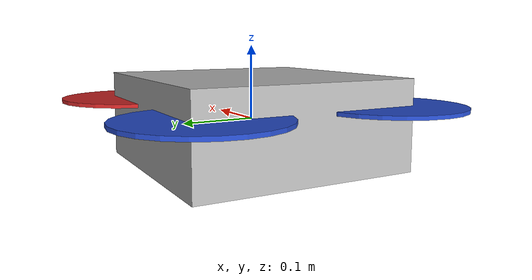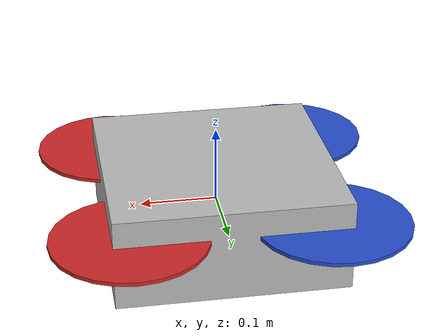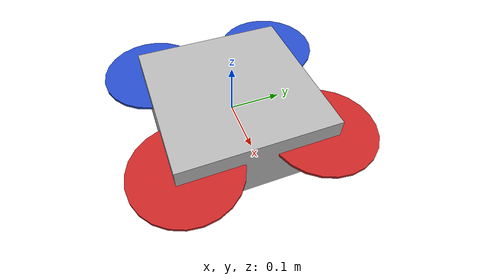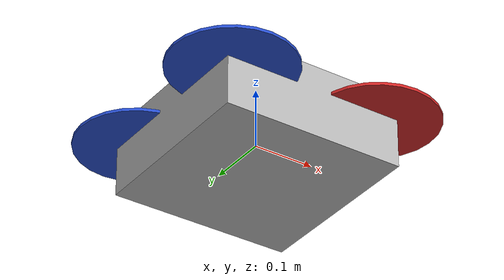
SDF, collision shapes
<?xml version="1.0"?>

<sdf version='1.6'>
  <model name='ardrone_model'>
  <static>false</static>

    <link name='base_link'>
      <pose>0 0 0 0 0 0</pose>
      <inertial>
        <pose>0 0 0 0 0 0</pose>
        <mass>1.5</mass>
        <inertia>
          <ixx>0.0347563</ixx>
          <ixy>0</ixy>
          <ixz>0</ixz>
          <iyy>0.0458929</iyy>
          <iyz>0</iyz>
          <izz>0.0977</izz>
        </inertia>
      </inertial>
      <collision name='base_link_inertia_collision'>
        <pose>0 0 0 0 0 0</pose>
        <geometry>
            <box>
              <size>0.3 0.3 0.12</size>
            </box>
        </geometry>
      </collision>
      <visual name='base_link_inertia_visual'>
        <pose>0 0 0 0 0 0</pose>
        <geometry>
          <mesh>
            <scale>1 1 1</scale>
            <uri>model://ardrone/meshes/ardrone/quadrotor_4.dae</uri>
          </mesh>
        </geometry>
      </visual>
    </link>
    <link name='imu_link'>
      <pose>0 0 0 0 0 0</pose>
      <inertial>
        <pose>0 0 0 0 0 0</pose>
        <mass>0.015</mass>
        <inertia>
          <ixx>1e-05</ixx>
          <ixy>0</ixy>
          <ixz>0</ixz>
          <iyy>1e-05</iyy>
          <iyz>0</iyz>
          <izz>1e-05</izz>
        </inertia>
      </inertial>
    </link>
    <joint name='imu_joint' type='revolute'>
      <child>imu_link</child>
      <parent>base_link</parent>
      <axis>
        <xyz>1 0 0</xyz>
        <limit>
          <lower>0</lower>
          <upper>0</upper>
          <effort>0</effort>
          <velocity>0</velocity>
        </limit>
        <dynamics>
          <spring_reference>0</spring_reference>
          <spring_stiffness>0</spring_stiffness>
        </dynamics>
        <use_parent_model_frame>1</use_parent_model_frame>
      </axis>
    </joint>
    <link name='imugt_link'>
      <pose>0 0 0 0 0 0</pose>
      <inertial>
        <pose>0 0 0 0 0 0</pose>
        <mass>1e-05</mass>
        <inertia>
          <ixx>1e-05</ixx>
          <ixy>0</ixy>
          <ixz>0</ixz>
          <iyy>1e-05</iyy>
          <iyz>0</iyz>
          <izz>1e-05</izz>
        </inertia>
      </inertial>
    </link>
    <joint name='imugt_joint' type='revolute'>
      <child>imugt_link</child>
      <parent>base_link</parent>
      <axis>
        <xyz>1 0 0</xyz>
        <limit>
          <lower>0</lower>
          <upper>0</upper>
          <effort>0</effort>
          <velocity>0</velocity>
        </limit>
        <dynamics>
          <spring_reference>0</spring_reference>
          <spring_stiffness>0</spring_stiffness>
        </dynamics>
        <use_parent_model_frame>1</use_parent_model_frame>
      </axis>
    </joint>
    <link name='odometry_sensor1_link'>
      <pose>0 0 0 0 0 0</pose>
      <inertial>
        <pose>0 0 0 0 0 0</pose>
        <mass>1e-05</mass>
        <inertia>
          <ixx>1e-05</ixx>
          <ixy>0</ixy>
          <ixz>0</ixz>
          <iyy>1e-05</iyy>
          <iyz>0</iyz>
          <izz>1e-05</izz>
        </inertia>
      </inertial>
    </link>
    <joint name='odometry_sensor1_joint' type='revolute'>
      <child>odometry_sensor1_link</child>
      <parent>base_link</parent>
      <axis>
        <xyz>1 0 0</xyz>
        <limit>
          <lower>0</lower>
          <upper>0</upper>
          <effort>0</effort>
          <velocity>0</velocity>
        </limit>
        <dynamics>
          <spring_reference>0</spring_reference>
          <spring_stiffness>0</spring_stiffness>
        </dynamics>
        <use_parent_model_frame>1</use_parent_model_frame>
      </axis>
    </joint>
    <link name='odometry_sensorgt_link'>
      <pose>0 0 0 0 0 0</pose>
      <inertial>
        <pose>0 0 0 0 0 0</pose>
        <mass>1e-05</mass>
        <inertia>
          <ixx>1e-05</ixx>
          <ixy>0</ixy>
          <ixz>0</ixz>
          <iyy>1e-05</iyy>
          <iyz>0</iyz>
          <izz>1e-05</izz>
        </inertia>
      </inertial>
    </link>
    <joint name='odometry_sensorgt_joint' type='revolute'>
      <child>odometry_sensorgt_link</child>
      <parent>base_link</parent>
      <axis>
        <xyz>1 0 0</xyz>
        <limit>
          <lower>0</lower>
          <upper>0</upper>
          <effort>0</effort>
          <velocity>0</velocity>
        </limit>
        <dynamics>
          <spring_reference>0</spring_reference>
          <spring_stiffness>0</spring_stiffness>
        </dynamics>
        <use_parent_model_frame>1</use_parent_model_frame>
      </axis>
    </joint>
    <link name='rotor_0'>
      <pose>0.127279 -0.127279 0.023 0 0 0</pose>
      <inertial>
        <pose>0 0 0 0 0 0</pose>
        <mass>0.005</mass>
        <inertia>
          <ixx>9.75e-07</ixx>
          <ixy>0</ixy>
          <ixz>0</ixz>
          <iyy>4.17041e-05</iyy>
          <iyz>0</iyz>
          <izz>4.26041e-05</izz>
        </inertia>
      </inertial>
      <collision name='rotor_0_collision'>
        <pose>0 0 0 0 0 0</pose>
        <geometry>
          <cylinder>
            <length>0.005</length>
            <radius>0.1</radius>
          </cylinder>
        </geometry>
        <surface>
          <contact>
            <ode/>
          </contact>
          <friction>
            <ode/>
          </friction>
        </surface>
      </collision>
      <visual name='rotor_0_visual'>
        <pose>0 0 0 0 0 0</pose>
        <geometry>
          <mesh>
            <scale>0.1 0.1 0.1</scale>
            <uri>model://ardrone/meshes/ardrone/propeller_ccw.dae</uri>
          </mesh>
        </geometry>
        <material>
          <script>
            <name>Gazebo/Red</name>
            <uri>file://media/materials/scripts/gazebo.material</uri>
          </script>
        </material>
      </visual>
      <gravity>1</gravity>
      <velocity_decay/>
    </link>
    <joint name='rotor_0_joint' type='revolute'>
      <child>rotor_0</child>
      <parent>base_link</parent>
      <axis>
        <xyz>0 0 1</xyz>
        <limit>
          <lower>-1e+16</lower>
          <upper>1e+16</upper>
        </limit>
        <dynamics>
          <spring_reference>0</spring_reference>
          <spring_stiffness>0</spring_stiffness>
        </dynamics>
        <use_parent_model_frame>1</use_parent_model_frame>
      </axis>
    </joint>
    <link name='rotor_1'>
      <pose>-0.127279 0.127279 0.023 0 0 0</pose>
      <inertial>
        <pose>0 0 0 0 0 0</pose>
        <mass>0.005</mass>
        <inertia>
          <ixx>9.75e-07</ixx>
          <ixy>0</ixy>
          <ixz>0</ixz>
          <iyy>4.17041e-05</iyy>
          <iyz>0</iyz>
          <izz>4.26041e-05</izz>
        </inertia>
      </inertial>
      <collision name='rotor_1_collision'>
        <pose>0 0 0 0 0 0</pose>
        <geometry>
          <cylinder>
            <length>0.005</length>
            <radius>0.1</radius>
          </cylinder>
        </geometry>
        <surface>
          <contact>
            <ode/>
          </contact>
          <friction>
            <ode/>
          </friction>
        </surface>
      </collision>
      <visual name='rotor_1_visual'>
        <pose>0 0 0 0 0 0</pose>
        <geometry>
          <mesh>
            <scale>0.1 0.1 0.1</scale>
            <uri>model://ardrone/meshes/ardrone/propeller_ccw.dae</uri>
          </mesh>
        </geometry>
        <material>
          <script>
            <name>Gazebo/Blue</name>
            <uri>file://media/materials/scripts/gazebo.material</uri>
          </script>
        </material>
      </visual>
      <gravity>1</gravity>
      <velocity_decay/>
    </link>
    <joint name='rotor_1_joint' type='revolute'>
      <child>rotor_1</child>
      <parent>base_link</parent>
      <axis>
        <xyz>0 0 1</xyz>
        <limit>
          <lower>-1e+16</lower>
          <upper>1e+16</upper>
        </limit>
        <dynamics>
          <spring_reference>0</spring_reference>
          <spring_stiffness>0</spring_stiffness>
        </dynamics>
        <use_parent_model_frame>1</use_parent_model_frame>
      </axis>
    </joint>
    <link name='rotor_2'>
      <pose>0.127279 0.127279 0.023 0 0 0</pose>
      <inertial>
        <pose>0 0 0 0 0 0</pose>
        <mass>0.005</mass>
        <inertia>
          <ixx>9.75e-07</ixx>
          <ixy>0</ixy>
          <ixz>0</ixz>
          <iyy>4.17041e-05</iyy>
          <iyz>0</iyz>
          <izz>4.26041e-05</izz>
        </inertia>
      </inertial>
      <collision name='rotor_2_collision'>
        <pose>0 0 0 0 0 0</pose>
        <geometry>
          <cylinder>
            <length>0.005</length>
            <radius>0.1</radius>
          </cylinder>
        </geometry>
        <surface>
          <contact>
            <ode/>
          </contact>
          <friction>
            <ode/>
          </friction>
        </surface>
      </collision>
      <visual name='rotor_2_visual'>
        <pose>0 0 0 0 0 0</pose>
        <geometry>
          <mesh>
            <scale>0.1 0.1 0.1</scale>
            <uri>model://ardrone/meshes/ardrone/propeller_cw.dae</uri>
          </mesh>
        </geometry>
        <material>
          <script>
            <name>Gazebo/Red</name>
            <uri>file://media/materials/scripts/gazebo.material</uri>
          </script>
        </material>
      </visual>
      <gravity>1</gravity>
      <velocity_decay/>
    </link>
    <joint name='rotor_2_joint' type='revolute'>
      <child>rotor_2</child>
      <parent>base_link</parent>
      <axis>
        <xyz>0 0 1</xyz>
        <limit>
          <lower>-1e+16</lower>
          <upper>1e+16</upper>
        </limit>
        <dynamics>
          <spring_reference>0</spring_reference>
          <spring_stiffness>0</spring_stiffness>
        </dynamics>
        <use_parent_model_frame>1</use_parent_model_frame>
      </axis>
    </joint>
    <link name='rotor_3'>
      <pose>-0.127279 -0.127279 0.023 0 0 0</pose>
      <inertial>
        <pose>0 0 0 0 0 0</pose>
        <mass>0.005</mass>
        <inertia>
          <ixx>9.75e-07</ixx>
          <ixy>0</ixy>
          <ixz>0</ixz>
          <iyy>4.17041e-05</iyy>
          <iyz>0</iyz>
          <izz>4.26041e-05</izz>
        </inertia>
      </inertial>
      <collision name='rotor_3_collision'>
        <pose>0 0 0 0 0 0</pose>
        <geometry>
          <cylinder>
            <length>0.005</length>
            <radius>0.1</radius>
          </cylinder>
        </geometry>
        <surface>
          <contact>
            <ode/>
          </contact>
          <friction>
            <ode/>
          </friction>
        </surface>
      </collision>
      <visual name='rotor_3_visual'>
        <pose>0 0 0 0 0 0</pose>
        <geometry>
          <mesh>
            <scale>0.1 0.1 0.1</scale>
            <uri>model://ardrone/meshes/ardrone/propeller_cw.dae</uri>
          </mesh>
        </geometry>
        <material>
          <script>
            <name>Gazebo/Blue</name>
            <uri>file://media/materials/scripts/gazebo.material</uri>
          </script>
        </material>
      </visual>
      <gravity>1</gravity>
      <velocity_decay/>
    </link>
    <joint name='rotor_3_joint' type='revolute'>
      <child>rotor_3</child>
      <parent>base_link</parent>
      <axis>
        <xyz>0 0 1</xyz>
        <limit>
          <lower>-1e+16</lower>
          <upper>1e+16</upper>
        </limit>
        <dynamics>
          <spring_reference>0</spring_reference>
          <spring_stiffness>0</spring_stiffness>
        </dynamics>
        <use_parent_model_frame>1</use_parent_model_frame>
      </axis>
    </joint>
    <plugin name='multirotor_base_plugin' filename='librotors_gazebo_multirotor_base_plugin.so'>
      <robotNamespace>ardrone</robotNamespace>
      <linkName>base_link</linkName>
      <rotorVelocitySlowdownSim>10</rotorVelocitySlowdownSim>
    </plugin>
    <plugin name='ardrone_front_right_motor_model' filename='librotors_gazebo_motor_model.so'>
      <robotNamespace>ardrone</robotNamespace>
      <jointName>rotor_0_joint</jointName>
      <linkName>rotor_0</linkName>
      <turningDirection>ccw</turningDirection>
      <timeConstantUp>0.0125</timeConstantUp>
      <timeConstantDown>0.025</timeConstantDown>
      <maxRotVelocity>838</maxRotVelocity>
      <motorConstant>8.54858e-06</motorConstant>
      <momentConstant>0.016</momentConstant>
      <commandSubTopic>gazebo/command/motor_speed</commandSubTopic>
      <motorNumber>0</motorNumber>
      <rotorDragCoefficient>8.06428e-05</rotorDragCoefficient>
      <rollingMomentCoefficient>1e-06</rollingMomentCoefficient>
      <motorSpeedPubTopic>motor_speed/0</motorSpeedPubTopic>
      <rotorVelocitySlowdownSim>10</rotorVelocitySlowdownSim>
    </plugin>
    <plugin name='ardrone_back_left_motor_model' filename='librotors_gazebo_motor_model.so'>
      <robotNamespace>ardrone</robotNamespace>
      <jointName>rotor_1_joint</jointName>
      <linkName>rotor_1</linkName>
      <turningDirection>ccw</turningDirection>
      <timeConstantUp>0.0125</timeConstantUp>
      <timeConstantDown>0.025</timeConstantDown>
      <maxRotVelocity>838</maxRotVelocity>
      <motorConstant>8.54858e-06</motorConstant>
      <momentConstant>0.016</momentConstant>
      <commandSubTopic>gazebo/command/motor_speed</commandSubTopic>
      <motorNumber>1</motorNumber>
      <rotorDragCoefficient>8.06428e-05</rotorDragCoefficient>
      <rollingMomentCoefficient>1e-06</rollingMomentCoefficient>
      <motorSpeedPubTopic>motor_speed/1</motorSpeedPubTopic>
      <rotorVelocitySlowdownSim>10</rotorVelocitySlowdownSim>
    </plugin>
    <plugin name='ardrone_front_left_motor_model' filename='librotors_gazebo_motor_model.so'>
      <robotNamespace>ardrone</robotNamespace>
      <jointName>rotor_2_joint</jointName>
      <linkName>rotor_2</linkName>
      <turningDirection>cw</turningDirection>
      <timeConstantUp>0.0125</timeConstantUp>
      <timeConstantDown>0.025</timeConstantDown>
      <maxRotVelocity>838</maxRotVelocity>
      <motorConstant>8.54858e-06</motorConstant>
      <momentConstant>0.016</momentConstant>
      <commandSubTopic>gazebo/command/motor_speed</commandSubTopic>
      <motorNumber>2</motorNumber>
      <rotorDragCoefficient>8.06428e-05</rotorDragCoefficient>
      <rollingMomentCoefficient>1e-06</rollingMomentCoefficient>
      <motorSpeedPubTopic>motor_speed/2</motorSpeedPubTopic>
      <rotorVelocitySlowdownSim>10</rotorVelocitySlowdownSim>
    </plugin>

    <plugin name='ardrone_back_right_motor_model' filename='librotors_gazebo_motor_model.so'>
      <robotNamespace>ardrone</robotNamespace>
      <jointName>rotor_3_joint</jointName>
      <linkName>rotor_3</linkName>
      <turningDirection>cw</turningDirection>
      <timeConstantUp>0.0125</timeConstantUp>
      <timeConstantDown>0.025</timeConstantDown>
      <maxRotVelocity>838</maxRotVelocity>
      <motorConstant>8.54858e-06</motorConstant>
      <momentConstant>0.016</momentConstant>
      <commandSubTopic>gazebo/command/motor_speed</commandSubTopic>
      <motorNumber>3</motorNumber>
      <rotorDragCoefficient>8.06428e-05</rotorDragCoefficient>
      <rollingMomentCoefficient>1e-06</rollingMomentCoefficient>
      <motorSpeedPubTopic>motor_speed/3</motorSpeedPubTopic>
      <rotorVelocitySlowdownSim>10</rotorVelocitySlowdownSim>
    </plugin>

    <plugin name='controller_interface' filename='librotors_gazebo_controller_interface.so'>
      <robotNamespace>ardrone</robotNamespace>
      <commandAttitudeThrustSubTopic>command/attitude</commandAttitudeThrustSubTopic>
      <commandRateThrustSubTopic>command/rate</commandRateThrustSubTopic>
      <commandMotorSpeedSubTopic>command/motor_speed</commandMotorSpeedSubTopic>
      <imuSubTopic>imu</imuSubTopic>
      <motorSpeedCommandPubTopic>gazebo/command/motor_speed</motorSpeedCommandPubTopic>
    </plugin>

    <plugin name='rotors_gazebo_imu_plugin' filename='librotors_gazebo_imu_plugin.so'>
      <robotNamespace>ardrone</robotNamespace>
      <linkName>imu_link</linkName>
      <imuTopic>imu</imuTopic>
      <gyroscopeNoiseDensity>0.0003394</gyroscopeNoiseDensity>
      <gyroscopeRandomWalk>3.8785e-05</gyroscopeRandomWalk>
      <gyroscopeBiasCorrelationTime>1000.0</gyroscopeBiasCorrelationTime>
      <gyroscopeTurnOnBiasSigma>0.0087</gyroscopeTurnOnBiasSigma>
      <accelerometerNoiseDensity>0.004</accelerometerNoiseDensity>
      <accelerometerRandomWalk>0.006</accelerometerRandomWalk>
      <accelerometerBiasCorrelationTime>300.0</accelerometerBiasCorrelationTime>
      <accelerometerTurnOnBiasSigma>0.196</accelerometerTurnOnBiasSigma>
    </plugin>

    <plugin name="rotors_gazebo_imugt_plugin" filename="librotors_gazebo_imu_plugin.so">
      <robotNamespace>ardrone</robotNamespace>
      <linkName>imugt_link</linkName>
      <imuTopic>ground_truth/imu</imuTopic>
      <gyroscopeNoiseDensity>0.0</gyroscopeNoiseDensity>
      <gyroscopeRandomWalk>0.0</gyroscopeRandomWalk>
      <gyroscopeBiasCorrelationTime>1000.0</gyroscopeBiasCorrelationTime>
      <gyroscopeTurnOnBiasSigma>0.0</gyroscopeTurnOnBiasSigma>
      <accelerometerNoiseDensity>0.0</accelerometerNoiseDensity>
      <accelerometerRandomWalk>0.0</accelerometerRandomWalk>
      <accelerometerBiasCorrelationTime>300.0</accelerometerBiasCorrelationTime>
      <accelerometerTurnOnBiasSigma>0.0</accelerometerTurnOnBiasSigma>
    </plugin>

    <plugin name="odometry_sensorgt" filename="librotors_gazebo_odometry_plugin.so">
      <linkName>odometry_sensorgt_link</linkName>
      <robotNamespace>ardrone</robotNamespace>
      <poseTopic>ground_truth/pose</poseTopic>
      <poseWithCovarianceTopic>ground_truth/pose_with_covariance</poseWithCovarianceTopic>
      <positionTopic>ground_truth/position</positionTopic>
      <transformTopic>ground_truth/transform</transformTopic>
      <odometryTopic>ground_truth/odometry</odometryTopic>
      <parentFrameId>world</parentFrameId>
      <childFrameId>base_link</childFrameId>
      <measurementDivisor>1</measurementDivisor>
      <measurementDelay>0</measurementDelay>
      <unknownDelay>0.0</unknownDelay>
      <noiseNormalPosition>0 0 0</noiseNormalPosition>
      <noiseNormalQuaternion>0 0 0</noiseNormalQuaternion>
      <noiseNormalLinearVelocity>0 0 0</noiseNormalLinearVelocity>
      <noiseNormalAngularVelocity>0 0 0</noiseNormalAngularVelocity>
      <noiseUniformPosition>0 0 0</noiseUniformPosition>
      <noiseUniformQuaternion>0 0 0</noiseUniformQuaternion>
      <noiseUniformLinearVelocity>0 0 0</noiseUniformLinearVelocity>
      <noiseUniformAngularVelocity>0 0 0</noiseUniformAngularVelocity>
    </plugin>

    <plugin name='odometry_sensor1' filename='librotors_gazebo_odometry_plugin.so'>
      <linkName>odometry_sensor1_link</linkName>
      <robotNamespace>ardrone</robotNamespace>
      <poseTopic>odometry_sensor1/pose</poseTopic>
      <poseWithCovarianceTopic>odometry_sensor1/pose_with_covariance</poseWithCovarianceTopic>
      <positionTopic>odometry_sensor1/position</positionTopic>
      <transformTopic>odometry_sensor1/transform</transformTopic>
      <odometryTopic>odometry_sensor1/odometry</odometryTopic>
      <parentFrameId>world</parentFrameId>
      <childFrameId>odometry_sensor1</childFrameId>
      <measurementDivisor>1</measurementDivisor>
      <measurementDelay>0</measurementDelay>
      <unknownDelay>0.0</unknownDelay>
      <noiseNormalPosition>0 0 0</noiseNormalPosition>
      <noiseNormalQuaternion>0 0 0</noiseNormalQuaternion>
      <noiseNormalLinearVelocity>0 0 0</noiseNormalLinearVelocity>
      <noiseNormalAngularVelocity>0 0 0</noiseNormalAngularVelocity>
      <noiseUniformPosition>0 0 0</noiseUniformPosition>
      <noiseUniformQuaternion>0 0 0</noiseUniformQuaternion>
      <noiseUniformLinearVelocity>0 0 0</noiseUniformLinearVelocity>
      <noiseUniformAngularVelocity>0 0 0</noiseUniformAngularVelocity>
    </plugin>
  </model>
</sdf>
